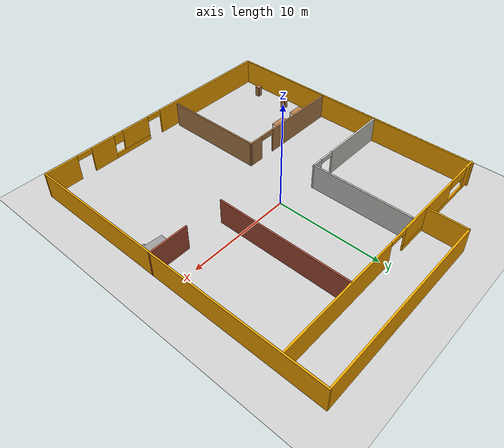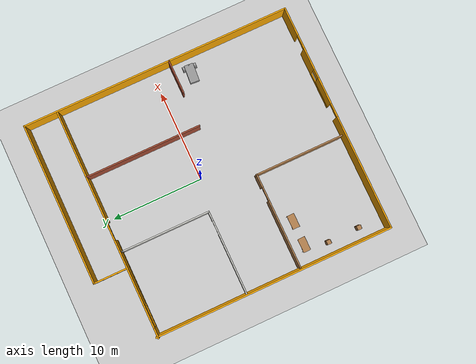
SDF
<sdf version="1.6">
 <world name="default">
  <model name="ground_plane">
   <static>1</static>
   <link name="link">
    <collision name="collision">
     <geometry><plane><normal>0 0 1</normal><size>100 100</size></plane></geometry>
     <surface>
      <contact><collide_bitmask>65535</collide_bitmask></contact>
      <friction><ode><mu>100</mu><mu2>50</mu2></ode></friction>
     </surface>
    </collision>
    <visual name="visual">
     <cast_shadows>0</cast_shadows>
     <geometry><plane><normal>0 0 1</normal><size>100 100</size></plane></geometry>
     <material>
      <script><uri>file://media/materials/scripts/gazebo.material</uri><name>Gazebo/Grey</name></script>
     </material>
    </visual>
   </link>
  </model>
  <model name="myhome">
   <pose>-0.234308 -0.560846 0 0 -0 0</pose>
   <link name="Wall_1">
    <collision name="Wall_1_Collision">
     <geometry><box><size>29.75 0.15 2.5</size></box></geometry>
     <pose>0 0 1.25 0 -0 0</pose>
    </collision>
    <visual name="Wall_1_Visual">
     <pose>0 0 1.25 0 -0 0</pose>
     <geometry><box><size>29.75 0.15 2.5</size></box></geometry>
     <material>
      <script><uri>file://media/materials/scripts/gazebo.material</uri><name>Gazebo/Grey</name></script>
      <ambient>1 0.666667 0 1</ambient>
     </material>
     <meta><layer>0</layer></meta>
    </visual>
    <pose>12.6114 0 0 0 0 -1.5708</pose>
   </link>
   <link name="Wall_10">
    <collision name="Wall_10_Collision">
     <geometry><box><size>12.75 0.15 2.5</size></box></geometry>
     <pose>0 0 1.25 0 -0 0</pose>
    </collision>
    <visual name="Wall_10_Visual">
     <pose>0 0 1.25 0 -0 0</pose>
     <geometry><box><size>12.75 0.15 2.5</size></box></geometry>
     <material>
      <script><uri>file://media/materials/scripts/gazebo.material</uri><name>Gazebo/Bricks</name></script>
      <ambient>1 1 1 1</ambient>
     </material>
     <meta><layer>0</layer></meta>
    </visual>
    <pose>5.14276 4.76599 0 0 -0 1.5708</pose>
   </link>
   <link name="Wall_12">
    <collision name="Wall_12_Collision">
     <geometry><box><size>9.75 0.15 2.5</size></box></geometry>
     <pose>0 0 1.25 0 -0 0</pose>
    </collision>
    <visual name="Wall_12_Visual">
     <pose>0 0 1.25 0 -0 0</pose>
     <geometry><box><size>9.75 0.15 2.5</size></box></geometry>
     <material>
      <script><uri>file://media/materials/scripts/gazebo.material</uri><name>Gazebo/CeilingTiled</name></script>
      <ambient>1 1 1 1</ambient>
     </material>
     <meta><layer>0</layer></meta>
    </visual>
    <pose>-3.26226 6.09462 0 0 0 -1.5708</pose>
   </link>
   <link name="Wall_13">
    <pose>-7.81226 1.29462 0 0 -0 3.14159</pose>
    <visual name="Wall_13_Visual_0">
     <pose>-4.07417 0 1.25 0 -0 0</pose>
     <geometry><box><size>1.10167 0.15 2.5</size></box></geometry>
     <material>
      <script><uri>file://media/materials/scripts/gazebo.material</uri><name>Gazebo/CeilingTiled</name></script>
      <ambient>1 1 1 1</ambient>
     </material>
     <meta><layer>0</layer></meta>
    </visual>
    <collision name="Wall_13_Collision_0">
     <geometry><box><size>1.10167 0.15 2.5</size></box></geometry>
     <pose>-4.07417 0 1.25 0 -0 0</pose>
    </collision>
    <visual name="Wall_13_Visual_1">
     <pose>1.30083 0 1.25 0 -0 0</pose>
     <geometry><box><size>6.64833 0.15 2.5</size></box></geometry>
     <material>
      <script><uri>file://media/materials/scripts/gazebo.material</uri><name>Gazebo/CeilingTiled</name></script>
      <ambient>1 1 1 1</ambient>
     </material>
     <meta><layer>0</layer></meta>
    </visual>
    <collision name="Wall_13_Collision_1">
     <geometry><box><size>6.64833 0.15 2.5</size></box></geometry>
     <pose>1.30083 0 1.25 0 -0 0</pose>
    </collision>
    <visual name="Wall_13_Visual_2">
     <pose>-2.77333 0 2.25 0 -0 0</pose>
     <geometry><box><size>1.5 0.15 0.5</size></box></geometry>
     <material>
      <script><uri>file://media/materials/scripts/gazebo.material</uri><name>Gazebo/CeilingTiled</name></script>
      <ambient>1 1 1 1</ambient>
     </material>
     <meta><layer>0</layer></meta>
    </visual>
    <collision name="Wall_13_Collision_2">
     <geometry><box><size>1.5 0.15 0.5</size></box></geometry>
     <pose>-2.77333 0 2.25 0 -0 0</pose>
    </collision>
   </link>
   <link name="Wall_15">
    <collision name="Wall_15_Collision">
     <geometry><box><size>9.75 0.15 2.5</size></box></geometry>
     <pose>0 0 1.25 0 -0 0</pose>
    </collision>
    <visual name="Wall_15_Visual">
     <pose>0 0 1.25 0 -0 0</pose>
     <geometry><box><size>9.75 0.15 2.5</size></box></geometry>
     <material>
      <script><uri>file://media/materials/scripts/gazebo.material</uri><name>Gazebo/Wood</name></script>
      <ambient>1 1 1 1</ambient>
     </material>
     <meta><layer>0</layer></meta>
    </visual>
    <pose>-1.91009 -9.54132 0 0 -0 1.5708</pose>
   </link>
   <link name="Wall_16">
    <pose>-7.08509 -4.74132 0 0 -0 3.14159</pose>
    <visual name="Wall_16_Visual_0">
     <pose>-4.50456 0 1.25 0 -0 0</pose>
     <geometry><box><size>1.49087 0.15 2.5</size></box></geometry>
     <material>
      <script><uri>file://media/materials/scripts/gazebo.material</uri><name>Gazebo/Wood</name></script>
      <ambient>1 1 1 1</ambient>
     </material>
     <meta><layer>0</layer></meta>
    </visual>
    <collision name="Wall_16_Collision_0">
     <geometry><box><size>1.49087 0.15 2.5</size></box></geometry>
     <pose>-4.50456 0 1.25 0 -0 0</pose>
    </collision>
    <visual name="Wall_16_Visual_1">
     <pose>1.49544 0 1.25 0 -0 0</pose>
     <geometry><box><size>7.50913 0.15 2.5</size></box></geometry>
     <material>
      <script><uri>file://media/materials/scripts/gazebo.material</uri><name>Gazebo/Wood</name></script>
      <ambient>1 1 1 1</ambient>
     </material>
     <meta><layer>0</layer></meta>
    </visual>
    <collision name="Wall_16_Collision_1">
     <geometry><box><size>7.50913 0.15 2.5</size></box></geometry>
     <pose>1.49544 0 1.25 0 -0 0</pose>
    </collision>
    <visual name="Wall_16_Visual_2">
     <pose>-3.00913 0 2.25 0 -0 0</pose>
     <geometry><box><size>1.5 0.15 0.5</size></box></geometry>
     <material>
      <script><uri>file://media/materials/scripts/gazebo.material</uri><name>Gazebo/Wood</name></script>
      <ambient>1 1 1 1</ambient>
     </material>
     <meta><layer>0</layer></meta>
    </visual>
    <collision name="Wall_16_Collision_2">
     <geometry><box><size>1.5 0.15 0.5</size></box></geometry>
     <pose>-3.00913 0 2.25 0 -0 0</pose>
    </collision>
   </link>
   <link name="Wall_18">
    <collision name="Wall_18_Collision">
     <geometry><box><size>0.15 0.15 2.5</size></box></geometry>
     <pose>0 0 1.25 0 -0 0</pose>
    </collision>
    <visual name="Wall_18_Visual">
     <pose>0 0 1.25 0 -0 0</pose>
     <geometry><box><size>0.15 0.15 2.5</size></box></geometry>
     <material>
      <script><uri>file://media/materials/scripts/gazebo.material</uri><name>Gazebo/Grey</name></script>
      <ambient>1 1 1 1</ambient>
     </material>
     <meta><layer>0</layer></meta>
    </visual>
    <pose>-3.26226 10.8946 0 0 -0 0</pose>
   </link>
   <link name="Wall_2">
    <pose>0.061369 -14.8 0 0 -0 3.14159</pose>
    <visual name="Wall_2_Visual_0">
     <pose>-11.0147 0 1.25 0 -0 0</pose>
     <geometry><box><size>3.22061 0.15 2.5</size></box></geometry>
     <material>
      <script><uri>file://media/materials/scripts/gazebo.material</uri><name>Gazebo/Grey</name></script>
      <ambient>1 0.666667 0 1</ambient>
     </material>
     <meta><layer>0</layer></meta>
    </visual>
    <collision name="Wall_2_Collision_0">
     <geometry><box><size>3.22061 0.15 2.5</size></box></geometry>
     <pose>-11.0147 0 1.25 0 -0 0</pose>
    </collision>
    <visual name="Wall_2_Visual_1">
     <pose>-6.67894 0 1.25 0 -0 0</pose>
     <geometry><box><size>2.4509 0.15 2.5</size></box></geometry>
     <material>
      <script><uri>file://media/materials/scripts/gazebo.material</uri><name>Gazebo/Grey</name></script>
      <ambient>1 0.666667 0 1</ambient>
     </material>
     <meta><layer>0</layer></meta>
    </visual>
    <collision name="Wall_2_Collision_1">
     <geometry><box><size>2.4509 0.15 2.5</size></box></geometry>
     <pose>-6.67894 0 1.25 0 -0 0</pose>
    </collision>
    <visual name="Wall_2_Visual_2">
     <pose>6.31564 0 1.25 0 -0 0</pose>
     <geometry><box><size>12.6187 0.15 2.5</size></box></geometry>
     <material>
      <script><uri>file://media/materials/scripts/gazebo.material</uri><name>Gazebo/Grey</name></script>
      <ambient>1 0.666667 0 1</ambient>
     </material>
     <meta><layer>0</layer></meta>
    </visual>
    <collision name="Wall_2_Collision_2">
     <geometry><box><size>12.6187 0.15 2.5</size></box></geometry>
     <pose>6.31564 0 1.25 0 -0 0</pose>
    </collision>
    <visual name="Wall_2_Visual_3">
     <pose>-3.47361 0 0.25 0 -0 0</pose>
     <geometry><box><size>3.95977 0.15 0.5</size></box></geometry>
     <material>
      <script><uri>file://media/materials/scripts/gazebo.material</uri><name>Gazebo/Grey</name></script>
      <ambient>1 0.666667 0 1</ambient>
     </material>
     <meta><layer>0</layer></meta>
    </visual>
    <collision name="Wall_2_Collision_3">
     <geometry><box><size>3.95977 0.15 0.5</size></box></geometry>
     <pose>-3.47361 0 0.25 0 -0 0</pose>
    </collision>
    <visual name="Wall_2_Visual_4">
     <pose>-2.97361 0 1.5 0 -0 0</pose>
     <geometry><box><size>2.95977 0.15 2</size></box></geometry>
     <material>
      <script><uri>file://media/materials/scripts/gazebo.material</uri><name>Gazebo/Grey</name></script>
      <ambient>1 0.666667 0 1</ambient>
     </material>
     <meta><layer>0</layer></meta>
    </visual>
    <collision name="Wall_2_Collision_4">
     <geometry><box><size>2.95977 0.15 2</size></box></geometry>
     <pose>-2.97361 0 1.5 0 -0 0</pose>
    </collision>
    <visual name="Wall_2_Visual_5">
     <pose>-4.95349 0 2 0 -0 0</pose>
     <geometry><box><size>1 0.15 1</size></box></geometry>
     <material>
      <script><uri>file://media/materials/scripts/gazebo.material</uri><name>Gazebo/Grey</name></script>
      <ambient>1 0.666667 0 1</ambient>
     </material>
     <meta><layer>0</layer></meta>
    </visual>
    <collision name="Wall_2_Collision_5">
     <geometry><box><size>1 0.15 1</size></box></geometry>
     <pose>-4.95349 0 2 0 -0 0</pose>
    </collision>
    <visual name="Wall_2_Visual_6">
     <pose>-8.65439 0 2.25 0 -0 0</pose>
     <geometry><box><size>1.5 0.15 0.5</size></box></geometry>
     <material>
      <script><uri>file://media/materials/scripts/gazebo.material</uri><name>Gazebo/Grey</name></script>
      <ambient>1 0.666667 0 1</ambient>
     </material>
     <meta><layer>0</layer></meta>
    </visual>
    <collision name="Wall_2_Collision_6">
     <geometry><box><size>1.5 0.15 0.5</size></box></geometry>
     <pose>-8.65439 0 2.25 0 -0 0</pose>
    </collision>
    <visual name="Wall_2_Visual_7">
     <pose>-0.743723 0 2.25 0 -0 0</pose>
     <geometry><box><size>1.5 0.15 0.5</size></box></geometry>
     <material>
      <script><uri>file://media/materials/scripts/gazebo.material</uri><name>Gazebo/Grey</name></script>
      <ambient>1 0.666667 0 1</ambient>
     </material>
     <meta><layer>0</layer></meta>
    </visual>
    <collision name="Wall_2_Collision_7">
     <geometry><box><size>1.5 0.15 0.5</size></box></geometry>
     <pose>-0.743723 0 2.25 0 -0 0</pose>
    </collision>
   </link>
   <link name="Wall_22">
    <collision name="Wall_22_Collision">
     <geometry><box><size>26.25 0.15 2.5</size></box></geometry>
     <pose>0 0 1.25 0 -0 0</pose>
    </collision>
    <visual name="Wall_22_Visual">
     <pose>0 0 1.25 0 -0 0</pose>
     <geometry><box><size>26.25 0.15 2.5</size></box></geometry>
     <material>
      <script><uri>file://media/materials/scripts/gazebo.material</uri><name>Gazebo/Grey</name></script>
      <ambient>1 0.666667 0 1</ambient>
     </material>
     <meta><layer>0</layer></meta>
    </visual>
    <pose>-12.4886 -1.75 0 0 -0 1.5708</pose>
   </link>
   <link name="Wall_24">
    <collision name="Wall_24_Collision">
     <geometry><box><size>17.75 0.15 2.5</size></box></geometry>
     <pose>0 0 1.25 0 -0 0</pose>
    </collision>
    <visual name="Wall_24_Visual">
     <pose>0 0 1.25 0 -0 0</pose>
     <geometry><box><size>17.75 0.15 2.5</size></box></geometry>
     <material>
      <script><uri>file://media/materials/scripts/gazebo.material</uri><name>Gazebo/Grey</name></script>
      <ambient>1 0.666667 0 1</ambient>
     </material>
     <meta><layer>0</layer></meta>
    </visual>
    <pose>3.81137 14.8 0 0 -0 3.14159</pose>
   </link>
   <link name="Wall_25">
    <collision name="Wall_25_Collision">
     <geometry><box><size>3.75 0.15 2.5</size></box></geometry>
     <pose>0 0 1.25 0 -0 0</pose>
    </collision>
    <visual name="Wall_25_Visual">
     <pose>0 0 1.25 0 -0 0</pose>
     <geometry><box><size>3.75 0.15 2.5</size></box></geometry>
     <material>
      <script><uri>file://media/materials/scripts/gazebo.material</uri><name>Gazebo/Grey</name></script>
      <ambient>1 0.666667 0 1</ambient>
     </material>
     <meta><layer>0</layer></meta>
    </visual>
    <pose>-4.98863 13 0 0 0 -1.5708</pose>
   </link>
   <link name="Wall_28">
    <collision name="Wall_28_Collision">
     <geometry><box><size>3.75 0.15 2.5</size></box></geometry>
     <pose>0 0 1.25 0 -0 0</pose>
    </collision>
    <visual name="Wall_28_Visual">
     <pose>0 0 1.25 0 -0 0</pose>
     <geometry><box><size>3.75 0.15 2.5</size></box></geometry>
     <material>
      <script><uri>file://media/materials/scripts/gazebo.material</uri><name>Gazebo/Bricks</name></script>
      <ambient>1 1 1 1</ambient>
     </material>
     <meta><layer>0</layer></meta>
    </visual>
    <pose>10.8145 -1.49857 0 0 -0 0</pose>
   </link>
   <link name="Wall_7">
    <pose>-0.064501 11.1407 0 0 -0 0</pose>
    <visual name="Wall_7_Visual_0">
     <pose>-12.0643 0 1.25 0 -0 0</pose>
     <geometry><box><size>1.1214 0.15 2.5</size></box></geometry>
     <material>
      <script><uri>file://media/materials/scripts/gazebo.material</uri><name>Gazebo/Grey</name></script>
      <ambient>1 0.666667 0 1</ambient>
     </material>
     <meta><layer>0</layer></meta>
    </visual>
    <collision name="Wall_7_Collision_0">
     <geometry><box><size>1.1214 0.15 2.5</size></box></geometry>
     <pose>-12.0643 0 1.25 0 -0 0</pose>
    </collision>
    <visual name="Wall_7_Visual_1">
     <pose>6.38957 0 1.25 0 -0 0</pose>
     <geometry><box><size>12.4709 0.15 2.5</size></box></geometry>
     <material>
      <script><uri>file://media/materials/scripts/gazebo.material</uri><name>Gazebo/Grey</name></script>
      <ambient>1 0.666667 0 1</ambient>
     </material>
     <meta><layer>0</layer></meta>
    </visual>
    <collision name="Wall_7_Collision_1">
     <geometry><box><size>12.4709 0.15 2.5</size></box></geometry>
     <pose>6.38957 0 1.25 0 -0 0</pose>
    </collision>
    <visual name="Wall_7_Visual_2">
     <pose>-6.67473 0 0.25 0 -0 0</pose>
     <geometry><box><size>9.65773 0.15 0.5</size></box></geometry>
     <material>
      <script><uri>file://media/materials/scripts/gazebo.material</uri><name>Gazebo/Grey</name></script>
      <ambient>1 0.666667 0 1</ambient>
     </material>
     <meta><layer>0</layer></meta>
    </visual>
    <collision name="Wall_7_Collision_2">
     <geometry><box><size>9.65773 0.15 0.5</size></box></geometry>
     <pose>-6.67473 0 0.25 0 -0 0</pose>
    </collision>
    <visual name="Wall_7_Visual_3">
     <pose>-5.42473 0 1.5 0 -0 0</pose>
     <geometry><box><size>7.15773 0.15 2</size></box></geometry>
     <material>
      <script><uri>file://media/materials/scripts/gazebo.material</uri><name>Gazebo/Grey</name></script>
      <ambient>1 0.666667 0 1</ambient>
     </material>
     <meta><layer>0</layer></meta>
    </visual>
    <collision name="Wall_7_Collision_3">
     <geometry><box><size>7.15773 0.15 2</size></box></geometry>
     <pose>-5.42473 0 1.5 0 -0 0</pose>
    </collision>
    <visual name="Wall_7_Visual_4">
     <pose>-10.2536 0 2 0 -0 0</pose>
     <geometry><box><size>2.5 0.15 1</size></box></geometry>
     <material>
      <script><uri>file://media/materials/scripts/gazebo.material</uri><name>Gazebo/Grey</name></script>
      <ambient>1 0.666667 0 1</ambient>
     </material>
     <meta><layer>0</layer></meta>
    </visual>
    <collision name="Wall_7_Collision_4">
     <geometry><box><size>2.5 0.15 1</size></box></geometry>
     <pose>-10.2536 0 2 0 -0 0</pose>
    </collision>
    <visual name="Wall_7_Visual_5">
     <pose>-0.845866 0 2.25 0 -0 0</pose>
     <geometry><box><size>2 0.15 0.5</size></box></geometry>
     <material>
      <script><uri>file://media/materials/scripts/gazebo.material</uri><name>Gazebo/Grey</name></script>
      <ambient>1 0.666667 0 1</ambient>
     </material>
     <meta><layer>0</layer></meta>
    </visual>
    <collision name="Wall_7_Collision_5">
     <geometry><box><size>2 0.15 0.5</size></box></geometry>
     <pose>-0.845866 0 2.25 0 -0 0</pose>
    </collision>
   </link>
   <static>1</static>
  </model>
  <model name="robot_car">
   <link name="link_1">
    <pose>-0.303354 -0.001131 0.03138 0 -0 0</pose>
    <inertial>
     <mass>1</mass>
     <inertia>
      <ixx>0.166667</ixx>
      <ixy>0</ixy>
      <ixz>0</ixz>
      <iyy>0.166667</iyy>
      <iyz>0</iyz>
      <izz>0.166667</izz>
     </inertia>
    </inertial>
    <visual name="visual">
     <geometry><box><size>2 1 0.5</size></box></geometry>
     <material>
      <lighting>1</lighting>
      <script><uri>file://media/materials/scripts/gazebo.material</uri><name>Gazebo/Grey</name></script>
      <shader type="pixel"><normal_map>__default__</normal_map></shader>
      <ambient>0.3 0.3 0.3 1</ambient>
      <diffuse>0.7 0.7 0.7 1</diffuse>
      <specular>0.01 0.01 0.01 1</specular>
      <emissive>0 0 0 1</emissive>
     </material>
    </visual>
    <collision name="collision">
     <geometry><box><size>2 1 0.5</size></box></geometry>
     <surface>
      <friction>
       <ode><mu>1</mu><mu2>1</mu2><fdir1>0 0 0</fdir1><slip1>0</slip1><slip2>0</slip2></ode>
       <torsional>
        <coefficient>1</coefficient>
        <patch_radius>0</patch_radius>
        <surface_radius>0</surface_radius>
        <use_patch_radius>1</use_patch_radius>
        <ode><slip>0</slip></ode>
       </torsional>
      </friction>
      <bounce><restitution_coefficient>0</restitution_coefficient><threshold>1e+06</threshold></bounce>
      <contact>
       <collide_without_contact>0</collide_without_contact>
       <collide_without_contact_bitmask>1</collide_without_contact_bitmask>
       <collide_bitmask>1</collide_bitmask>
       <ode>
        <soft_cfm>0</soft_cfm>
        <soft_erp>0.2</soft_erp>
        <kp>1e+13</kp>
        <kd>1</kd>
        <max_vel>0.01</max_vel>
        <min_depth>0</min_depth>
       </ode>
       <bullet>
        <split_impulse>1</split_impulse>
        <split_impulse_penetration_threshold>-0.01</split_impulse_penetration_threshold>
        <soft_cfm>0</soft_cfm>
        <soft_erp>0.2</soft_erp>
        <kp>1e+13</kp>
        <kd>1</kd>
       </bullet>
      </contact>
     </surface>
    </collision>
   </link>
   <link name="link_2">
    <pose>0.396646 -0.62616 -0.06862 1.5707 -0 0</pose>
    <inertial>
     <mass>1</mass>
     <inertia><ixx>0.145833</ixx><ixy>0</ixy><ixz>0</ixz><iyy>0.145833</iyy><iyz>0</iyz><izz>0.125</izz></inertia>
    </inertial>
    <visual name="visual">
     <geometry><cylinder><radius>0.3</radius><length>0.25</length></cylinder></geometry>
     <material>
      <lighting>1</lighting>
      <script><uri>file://media/materials/scripts/gazebo.material</uri><name>Gazebo/Grey</name></script>
      <shader type="pixel"><normal_map>__default__</normal_map></shader>
      <ambient>0.3 0.3 0.3 1</ambient>
      <diffuse>0.7 0.7 0.7 1</diffuse>
      <specular>0.01 0.01 0.01 1</specular>
      <emissive>0 0 0 1</emissive>
     </material>
    </visual>
    <collision name="collision">
     <geometry><cylinder><radius>0.3</radius><length>0.25</length></cylinder></geometry>
     <surface>
      <friction>
       <ode><mu>1</mu><mu2>1</mu2><fdir1>0 0 0</fdir1><slip1>0</slip1><slip2>0</slip2></ode>
       <torsional>
        <coefficient>1</coefficient>
        <patch_radius>0</patch_radius>
        <surface_radius>0</surface_radius>
        <use_patch_radius>1</use_patch_radius>
        <ode><slip>0</slip></ode>
       </torsional>
      </friction>
      <bounce><restitution_coefficient>0</restitution_coefficient><threshold>1e+06</threshold></bounce>
      <contact>
       <collide_without_contact>0</collide_without_contact>
       <collide_without_contact_bitmask>1</collide_without_contact_bitmask>
       <collide_bitmask>1</collide_bitmask>
       <ode>
        <soft_cfm>0</soft_cfm>
        <soft_erp>0.2</soft_erp>
        <kp>1e+13</kp>
        <kd>1</kd>
        <max_vel>0.01</max_vel>
        <min_depth>0</min_depth>
       </ode>
       <bullet>
        <split_impulse>1</split_impulse>
        <split_impulse_penetration_threshold>-0.01</split_impulse_penetration_threshold>
        <soft_cfm>0</soft_cfm>
        <soft_erp>0.2</soft_erp>
        <kp>1e+13</kp>
        <kd>1</kd>
       </bullet>
      </contact>
     </surface>
    </collision>
   </link>
   <link name="link_2_clone">
    <pose>0.396646 0.623898 -0.06862 1.5707 -0 0</pose>
    <inertial>
     <mass>1</mass>
     <inertia><ixx>0.145833</ixx><ixy>0</ixy><ixz>0</ixz><iyy>0.145833</iyy><iyz>0</iyz><izz>0.125</izz></inertia>
    </inertial>
    <visual name="visual">
     <geometry><cylinder><radius>0.3</radius><length>0.25</length></cylinder></geometry>
     <material>
      <lighting>1</lighting>
      <script><uri>file://media/materials/scripts/gazebo.material</uri><name>Gazebo/Grey</name></script>
      <shader type="pixel"><normal_map>__default__</normal_map></shader>
      <ambient>0.3 0.3 0.3 1</ambient>
      <diffuse>0.7 0.7 0.7 1</diffuse>
      <specular>0.01 0.01 0.01 1</specular>
      <emissive>0 0 0 1</emissive>
     </material>
    </visual>
    <collision name="collision">
     <geometry><cylinder><radius>0.3</radius><length>0.25</length></cylinder></geometry>
     <surface>
      <friction>
       <ode><mu>1</mu><mu2>1</mu2><fdir1>0 0 0</fdir1><slip1>0</slip1><slip2>0</slip2></ode>
       <torsional>
        <coefficient>1</coefficient>
        <patch_radius>0</patch_radius>
        <surface_radius>0</surface_radius>
        <use_patch_radius>1</use_patch_radius>
        <ode><slip>0</slip></ode>
       </torsional>
      </friction>
      <bounce><restitution_coefficient>0</restitution_coefficient><threshold>1e+06</threshold></bounce>
      <contact>
       <collide_without_contact>0</collide_without_contact>
       <collide_without_contact_bitmask>1</collide_without_contact_bitmask>
       <collide_bitmask>1</collide_bitmask>
       <ode>
        <soft_cfm>0</soft_cfm>
        <soft_erp>0.2</soft_erp>
        <kp>1e+13</kp>
        <kd>1</kd>
        <max_vel>0.01</max_vel>
        <min_depth>0</min_depth>
       </ode>
       <bullet>
        <split_impulse>1</split_impulse>
        <split_impulse_penetration_threshold>-0.01</split_impulse_penetration_threshold>
        <soft_cfm>0</soft_cfm>
        <soft_erp>0.2</soft_erp>
        <kp>1e+13</kp>
        <kd>1</kd>
       </bullet>
      </contact>
     </surface>
    </collision>
   </link>
   <link name="link_3">
    <pose>-1.10335 -0.001131 -0.16862 0 -0 0</pose>
    <inertial>
     <mass>1</mass>
     <inertia><ixx>0.1</ixx><ixy>0</ixy><ixz>0</ixz><iyy>0.1</iyy><iyz>0</iyz><izz>0.1</izz></inertia>
    </inertial>
    <visual name="visual">
     <geometry><sphere><radius>0.2</radius></sphere></geometry>
     <material>
      <lighting>1</lighting>
      <script><uri>file://media/materials/scripts/gazebo.material</uri><name>Gazebo/Grey</name></script>
      <shader type="pixel"><normal_map>__default__</normal_map></shader>
      <ambient>0.3 0.3 0.3 1</ambient>
      <diffuse>0.7 0.7 0.7 1</diffuse>
      <specular>0.01 0.01 0.01 1</specular>
      <emissive>0 0 0 1</emissive>
     </material>
    </visual>
    <collision name="collision">
     <geometry><sphere><radius>0.2</radius></sphere></geometry>
     <surface>
      <friction>
       <ode><mu>1</mu><mu2>1</mu2><fdir1>0 0 0</fdir1><slip1>0</slip1><slip2>0</slip2></ode>
       <torsional>
        <coefficient>1</coefficient>
        <patch_radius>0</patch_radius>
        <surface_radius>0</surface_radius>
        <use_patch_radius>1</use_patch_radius>
        <ode><slip>0</slip></ode>
       </torsional>
      </friction>
      <bounce><restitution_coefficient>0</restitution_coefficient><threshold>1e+06</threshold></bounce>
      <contact>
       <collide_without_contact>0</collide_without_contact>
       <collide_without_contact_bitmask>1</collide_without_contact_bitmask>
       <collide_bitmask>1</collide_bitmask>
       <ode>
        <soft_cfm>0</soft_cfm>
        <soft_erp>0.2</soft_erp>
        <kp>1e+13</kp>
        <kd>1</kd>
        <max_vel>0.01</max_vel>
        <min_depth>0</min_depth>
       </ode>
       <bullet>
        <split_impulse>1</split_impulse>
        <split_impulse_penetration_threshold>-0.01</split_impulse_penetration_threshold>
        <soft_cfm>0</soft_cfm>
        <soft_erp>0.2</soft_erp>
        <kp>1e+13</kp>
        <kd>1</kd>
       </bullet>
      </contact>
     </surface>
    </collision>
   </link>
   <model name="depth_camera">
    <link name="link">
     <pose>0 0 0.05 0 -0 0</pose>
     <inertial>
      <mass>0.1</mass>
      <inertia>
       <ixx>0.000166667</ixx>
       <iyy>0.000166667</iyy>
       <izz>0.000166667</izz>
       <ixy>0</ixy>
       <ixz>0</ixz>
       <iyz>0</iyz>
      </inertia>
     </inertial>
     <collision name="collision"><geometry><box><size>0.1 0.1 0.1</size></box></geometry></collision>
     <visual name="visual"><geometry><box><size>0.1 0.1 0.1</size></box></geometry></visual>
     <sensor name="camera" type="depth">
      <camera name="__default__">
       <horizontal_fov>1.047</horizontal_fov>
       <image><width>320</width><height>240</height></image>
       <clip><near>0.1</near><far>100</far></clip>
      </camera>
      <always_on>1</always_on>
      <update_rate>30</update_rate>
      <visualize>1</visualize>
     </sensor>
    </link>
    <pose>0.613416 0.004522 0.27448 0 -0 0</pose>
   </model>
   <joint name="link_1_JOINT_0" type="revolute">
    <parent>link_1</parent>
    <child>link_2</child>
    <axis>
     <xyz>0 0 1</xyz>
     <use_parent_model_frame>0</use_parent_model_frame>
     <limit>
      <lower>-1.79769e+308</lower>
      <upper>1.79769e+308</upper>
      <effort>-1</effort>
      <velocity>-1</velocity>
     </limit>
     <dynamics>
      <spring_reference>0</spring_reference>
      <spring_stiffness>0</spring_stiffness>
      <damping>0</damping>
     </dynamics>
    </axis>
    <physics>
     <ode><limit><cfm>0</cfm><erp>0.2</erp></limit><suspension><cfm>0</cfm><erp>0.2</erp></suspension></ode>
    </physics>
   </joint>
   <joint name="link_1_JOINT_1" type="revolute">
    <parent>link_1</parent>
    <child>link_2_clone</child>
    <axis>
     <xyz>0 0 1</xyz>
     <use_parent_model_frame>0</use_parent_model_frame>
     <limit>
      <lower>-1.79769e+308</lower>
      <upper>1.79769e+308</upper>
      <effort>-1</effort>
      <velocity>-1</velocity>
     </limit>
     <dynamics>
      <spring_reference>0</spring_reference>
      <spring_stiffness>0</spring_stiffness>
      <damping>0</damping>
     </dynamics>
    </axis>
    <physics>
     <ode><limit><cfm>0</cfm><erp>0.2</erp></limit><suspension><cfm>0</cfm><erp>0.2</erp></suspension></ode>
    </physics>
   </joint>
   <joint name="link_1_JOINT_3" type="ball">
    <parent>link_1</parent>
    <child>link_3</child>
    <physics>
     <ode><limit><cfm>0</cfm><erp>0.2</erp></limit><suspension><cfm>0</cfm><erp>0.2</erp></suspension></ode>
    </physics>
   </joint>
   <joint name="link_1_JOINT_5" type="fixed">
    <parent>link_1</parent>
    <child>depth_camera::link</child>
    <pose>0 0 0 0 -0.01 0</pose>
    <physics>
     <ode><limit><cfm>0</cfm><erp>0.2</erp></limit><suspension><cfm>0</cfm><erp>0.2</erp></suspension></ode>
    </physics>
   </joint>
   <static>0</static>
   <pose>10.9118 -3.83905 0.368627 4e-06 -6e-06 -0.074515</pose>
  </model>
  <model name="cabinet_1">
   <static>1</static>
   <link name="cabinet_bottom_plate">
    <inertial>
     <pose>0 0 -1 0 -0 0</pose>
     <inertia><ixx>2.05</ixx><ixy>0</ixy><ixz>0</ixz><iyy>2.05</iyy><iyz>0</iyz><izz>2.05</izz></inertia>
     <mass>25</mass>
    </inertial>
    <collision name="cabinet_bottom_plate_geom">
     <pose>0 0 0.01 0 -0 0</pose>
     <geometry><box><size>0.45 0.45 0.02</size></box></geometry>
    </collision>
    <visual name="cabinet_bottom_plate_geom_visual">
     <pose>0 0 0.01 0 -0 0</pose>
     <geometry><box><size>0.45 0.45 0.02</size></box></geometry>
     <material>
      <script><uri>file://media/materials/scripts/gazebo.material</uri><name>Gazebo/Wood</name></script>
     </material>
    </visual>
    <collision name="cabinet_bottom_plate_geom_cabinet_back_plate">
     <pose>0.235 0 0.51 0 -0 0</pose>
     <geometry><box><size>0.02 0.45 1.02</size></box></geometry>
    </collision>
    <visual name="cabinet_bottom_plate_geom_cabinet_back_plate_visual">
     <pose>0.235 0 0.51 0 -0 0</pose>
     <geometry><box><size>0.02 0.45 1.02</size></box></geometry>
     <material>
      <script><uri>file://media/materials/scripts/gazebo.material</uri><name>Gazebo/Wood</name></script>
     </material>
    </visual>
    <collision name="cabinet_bottom_plate_geom_cabinet_left_plate">
     <pose>0 0.235 0.51 0 -0 0</pose>
     <geometry><box><size>0.45 0.02 1.02</size></box></geometry>
    </collision>
    <visual name="cabinet_bottom_plate_geom_cabinet_left_plate_visual">
     <pose>0 0.235 0.51 0 -0 0</pose>
     <geometry><box><size>0.45 0.02 1.02</size></box></geometry>
     <material>
      <script><uri>file://media/materials/scripts/gazebo.material</uri><name>Gazebo/Wood</name></script>
     </material>
    </visual>
    <collision name="cabinet_bottom_plate_geom_cabinet_middle_plate">
     <pose>0 0 0.51 0 -0 0</pose>
     <geometry><box><size>0.45 0.45 0.02</size></box></geometry>
    </collision>
    <visual name="cabinet_bottom_plate_geom_cabinet_middle_plate_visual">
     <pose>0 0 0.51 0 -0 0</pose>
     <geometry><box><size>0.45 0.45 0.02</size></box></geometry>
     <material>
      <script><uri>file://media/materials/scripts/gazebo.material</uri><name>Gazebo/Wood</name></script>
     </material>
    </visual>
    <collision name="cabinet_bottom_plate_geom_cabinet_right_plate">
     <pose>0 -0.235 0.51 0 -0 0</pose>
     <geometry><box><size>0.45 0.02 1.02</size></box></geometry>
    </collision>
    <visual name="cabinet_bottom_plate_geom_cabinet_right_plate_visual">
     <pose>0 -0.235 0.51 0 -0 0</pose>
     <geometry><box><size>0.45 0.02 1.02</size></box></geometry>
     <material>
      <script><uri>file://media/materials/scripts/gazebo.material</uri><name>Gazebo/Wood</name></script>
     </material>
    </visual>
    <collision name="cabinet_bottom_plate_geom_cabinet_top_plate">
     <pose>0 0 1.01 0 -0 0</pose>
     <geometry><box><size>0.45 0.45 0.02</size></box></geometry>
    </collision>
    <visual name="cabinet_bottom_plate_geom_cabinet_top_plate_visual">
     <pose>0 0 1.01 0 -0 0</pose>
     <geometry><box><size>0.45 0.45 0.02</size></box></geometry>
     <material>
      <script><uri>file://media/materials/scripts/gazebo.material</uri><name>Gazebo/Wood</name></script>
     </material>
    </visual>
   </link>
   <pose>-11.4912 -9.22779 0 0 -0 0</pose>
  </model>
  <model name="cabinet_2">
   <static>1</static>
   <link name="cabinet_bottom_plate">
    <inertial>
     <pose>0 0 -1 0 -0 0</pose>
     <inertia><ixx>2.05</ixx><ixy>0</ixy><ixz>0</ixz><iyy>2.05</iyy><iyz>0</iyz><izz>2.05</izz></inertia>
     <mass>25</mass>
    </inertial>
    <collision name="cabinet_bottom_plate_geom">
     <pose>0 0 0.01 0 -0 0</pose>
     <geometry><box><size>0.45 0.45 0.02</size></box></geometry>
    </collision>
    <visual name="cabinet_bottom_plate_geom_visual">
     <pose>0 0 0.01 0 -0 0</pose>
     <geometry><box><size>0.45 0.45 0.02</size></box></geometry>
     <material>
      <script><uri>file://media/materials/scripts/gazebo.material</uri><name>Gazebo/Wood</name></script>
     </material>
    </visual>
    <collision name="cabinet_bottom_plate_geom_cabinet_back_plate">
     <pose>0.235 0 0.51 0 -0 0</pose>
     <geometry><box><size>0.02 0.45 1.02</size></box></geometry>
    </collision>
    <visual name="cabinet_bottom_plate_geom_cabinet_back_plate_visual">
     <pose>0.235 0 0.51 0 -0 0</pose>
     <geometry><box><size>0.02 0.45 1.02</size></box></geometry>
     <material>
      <script><uri>file://media/materials/scripts/gazebo.material</uri><name>Gazebo/Wood</name></script>
     </material>
    </visual>
    <collision name="cabinet_bottom_plate_geom_cabinet_left_plate">
     <pose>0 0.235 0.51 0 -0 0</pose>
     <geometry><box><size>0.45 0.02 1.02</size></box></geometry>
    </collision>
    <visual name="cabinet_bottom_plate_geom_cabinet_left_plate_visual">
     <pose>0 0.235 0.51 0 -0 0</pose>
     <geometry><box><size>0.45 0.02 1.02</size></box></geometry>
     <material>
      <script><uri>file://media/materials/scripts/gazebo.material</uri><name>Gazebo/Wood</name></script>
     </material>
    </visual>
    <collision name="cabinet_bottom_plate_geom_cabinet_middle_plate">
     <pose>0 0 0.51 0 -0 0</pose>
     <geometry><box><size>0.45 0.45 0.02</size></box></geometry>
    </collision>
    <visual name="cabinet_bottom_plate_geom_cabinet_middle_plate_visual">
     <pose>0 0 0.51 0 -0 0</pose>
     <geometry><box><size>0.45 0.45 0.02</size></box></geometry>
     <material>
      <script><uri>file://media/materials/scripts/gazebo.material</uri><name>Gazebo/Wood</name></script>
     </material>
    </visual>
    <collision name="cabinet_bottom_plate_geom_cabinet_right_plate">
     <pose>0 -0.235 0.51 0 -0 0</pose>
     <geometry><box><size>0.45 0.02 1.02</size></box></geometry>
    </collision>
    <visual name="cabinet_bottom_plate_geom_cabinet_right_plate_visual">
     <pose>0 -0.235 0.51 0 -0 0</pose>
     <geometry><box><size>0.45 0.02 1.02</size></box></geometry>
     <material>
      <script><uri>file://media/materials/scripts/gazebo.material</uri><name>Gazebo/Wood</name></script>
     </material>
    </visual>
    <collision name="cabinet_bottom_plate_geom_cabinet_top_plate">
     <pose>0 0 1.01 0 -0 0</pose>
     <geometry><box><size>0.45 0.45 0.02</size></box></geometry>
    </collision>
    <visual name="cabinet_bottom_plate_geom_cabinet_top_plate_visual">
     <pose>0 0 1.01 0 -0 0</pose>
     <geometry><box><size>0.45 0.45 0.02</size></box></geometry>
     <material>
      <script><uri>file://media/materials/scripts/gazebo.material</uri><name>Gazebo/Wood</name></script>
     </material>
    </visual>
   </link>
   <pose>-11.4499 -12.7184 0 0 -0 0</pose>
  </model>
  <model name="table">
   <static>1</static>
   <link name="link">
    <collision name="surface">
     <pose>0 0 1 0 -0 0</pose>
     <geometry><box><size>1.5 0.8 0.03</size></box></geometry>
     <surface><friction><ode><mu>0.6</mu><mu2>0.6</mu2></ode></friction></surface>
    </collision>
    <visual name="visual1">
     <pose>0 0 1 0 -0 0</pose>
     <geometry><box><size>1.5 0.8 0.03</size></box></geometry>
     <material>
      <script><uri>file://media/materials/scripts/gazebo.material</uri><name>Gazebo/Wood</name></script>
     </material>
    </visual>
    <collision name="front_left_leg">
     <pose>0.68 0.38 0.5 0 -0 0</pose>
     <geometry><cylinder><radius>0.02</radius><length>1</length></cylinder></geometry>
    </collision>
    <visual name="front_left_leg">
     <pose>0.68 0.38 0.5 0 -0 0</pose>
     <geometry><cylinder><radius>0.02</radius><length>1</length></cylinder></geometry>
     <material>
      <script><uri>file://media/materials/scripts/gazebo.material</uri><name>Gazebo/Grey</name></script>
     </material>
    </visual>
    <collision name="front_right_leg">
     <pose>0.68 -0.38 0.5 0 -0 0</pose>
     <geometry><cylinder><radius>0.02</radius><length>1</length></cylinder></geometry>
    </collision>
    <visual name="front_right_leg">
     <pose>0.68 -0.38 0.5 0 -0 0</pose>
     <geometry><cylinder><radius>0.02</radius><length>1</length></cylinder></geometry>
     <material>
      <script><uri>file://media/materials/scripts/gazebo.material</uri><name>Gazebo/Grey</name></script>
     </material>
    </visual>
    <collision name="back_right_leg">
     <pose>-0.68 -0.38 0.5 0 -0 0</pose>
     <geometry><cylinder><radius>0.02</radius><length>1</length></cylinder></geometry>
    </collision>
    <visual name="back_right_leg">
     <pose>-0.68 -0.38 0.5 0 -0 0</pose>
     <geometry><cylinder><radius>0.02</radius><length>1</length></cylinder></geometry>
     <material>
      <script><uri>file://media/materials/scripts/gazebo.material</uri><name>Gazebo/Grey</name></script>
     </material>
    </visual>
    <collision name="back_left_leg">
     <pose>-0.68 0.38 0.5 0 -0 0</pose>
     <geometry><cylinder><radius>0.02</radius><length>1</length></cylinder></geometry>
    </collision>
    <visual name="back_left_leg">
     <pose>-0.68 0.38 0.5 0 -0 0</pose>
     <geometry><cylinder><radius>0.02</radius><length>1</length></cylinder></geometry>
     <material>
      <script><uri>file://media/materials/scripts/gazebo.material</uri><name>Gazebo/Grey</name></script>
     </material>
    </visual>
   </link>
   <pose>-8.03014 -6.81331 0 0 -0 0</pose>
  </model>
  <model name="table_1">
   <static>1</static>
   <link name="link">
    <collision name="surface">
     <pose>0 0 1 0 -0 0</pose>
     <geometry><box><size>1.5 0.8 0.03</size></box></geometry>
     <surface><friction><ode><mu>0.6</mu><mu2>0.6</mu2></ode></friction></surface>
    </collision>
    <visual name="visual1">
     <pose>0 0 1 0 -0 0</pose>
     <geometry><box><size>1.5 0.8 0.03</size></box></geometry>
     <material>
      <script><uri>file://media/materials/scripts/gazebo.material</uri><name>Gazebo/Wood</name></script>
     </material>
    </visual>
    <collision name="front_left_leg">
     <pose>0.68 0.38 0.5 0 -0 0</pose>
     <geometry><cylinder><radius>0.02</radius><length>1</length></cylinder></geometry>
    </collision>
    <visual name="front_left_leg">
     <pose>0.68 0.38 0.5 0 -0 0</pose>
     <geometry><cylinder><radius>0.02</radius><length>1</length></cylinder></geometry>
     <material>
      <script><uri>file://media/materials/scripts/gazebo.material</uri><name>Gazebo/Grey</name></script>
     </material>
    </visual>
    <collision name="front_right_leg">
     <pose>0.68 -0.38 0.5 0 -0 0</pose>
     <geometry><cylinder><radius>0.02</radius><length>1</length></cylinder></geometry>
    </collision>
    <visual name="front_right_leg">
     <pose>0.68 -0.38 0.5 0 -0 0</pose>
     <geometry><cylinder><radius>0.02</radius><length>1</length></cylinder></geometry>
     <material>
      <script><uri>file://media/materials/scripts/gazebo.material</uri><name>Gazebo/Grey</name></script>
     </material>
    </visual>
    <collision name="back_right_leg">
     <pose>-0.68 -0.38 0.5 0 -0 0</pose>
     <geometry><cylinder><radius>0.02</radius><length>1</length></cylinder></geometry>
    </collision>
    <visual name="back_right_leg">
     <pose>-0.68 -0.38 0.5 0 -0 0</pose>
     <geometry><cylinder><radius>0.02</radius><length>1</length></cylinder></geometry>
     <material>
      <script><uri>file://media/materials/scripts/gazebo.material</uri><name>Gazebo/Grey</name></script>
     </material>
    </visual>
    <collision name="back_left_leg">
     <pose>-0.68 0.38 0.5 0 -0 0</pose>
     <geometry><cylinder><radius>0.02</radius><length>1</length></cylinder></geometry>
    </collision>
    <visual name="back_left_leg">
     <pose>-0.68 0.38 0.5 0 -0 0</pose>
     <geometry><cylinder><radius>0.02</radius><length>1</length></cylinder></geometry>
     <material>
      <script><uri>file://media/materials/scripts/gazebo.material</uri><name>Gazebo/Grey</name></script>
     </material>
    </visual>
   </link>
   <pose>-10.6475 -6.79981 0 0 -0 0</pose>
  </model>
 </world>
</sdf>
